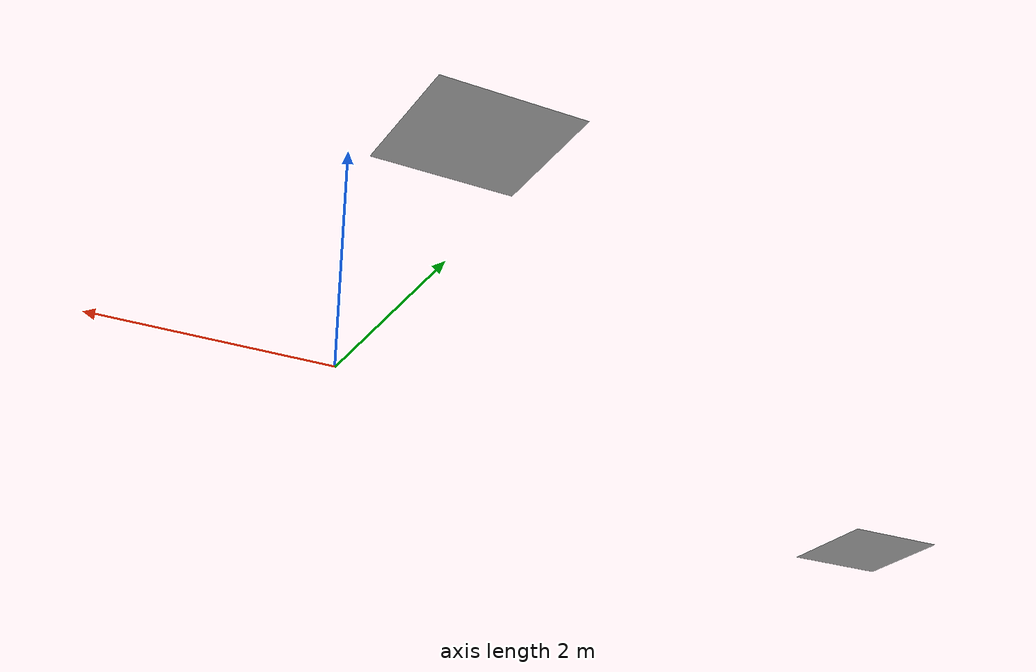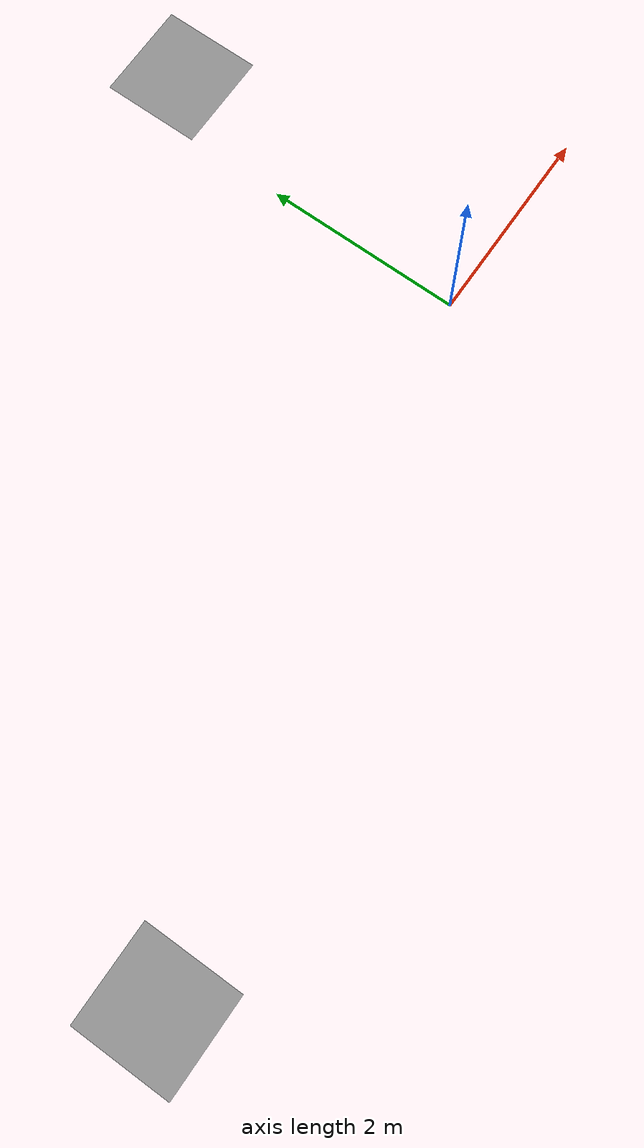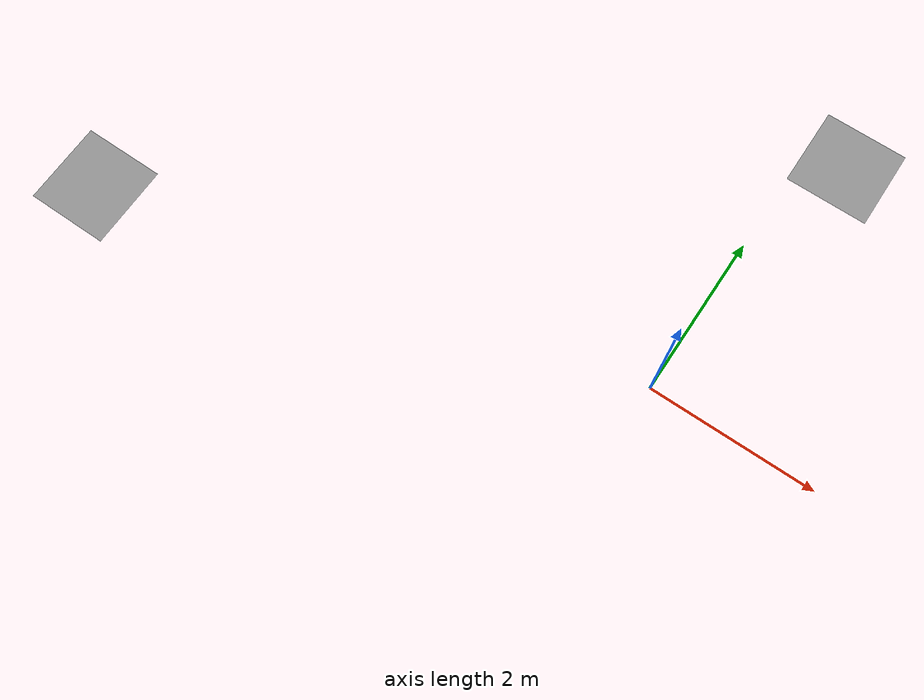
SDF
<?xml version='1.0'?>
<sdf version='1.4'>
  <model name='BuildingCorridor'>
    <link name='Stairs_1'>
      <visual name='Stairs_1_Visual_0'>
        <pose>-6.5 -1.505 0 0 -0 0</pose>
        <geometry>
          <box>
            <size>1 1.01 0</size>
          </box>
        </geometry>
        <material>
          <script>
            <uri>file://media/materials/scripts/gazebo.material</uri>
            <name>Gazebo/Grey</name>
          </script>
        </material>
      </visual>
      <collision name='Stairs_1_Collision_0'>
        <geometry>
          <box>
            <size>1 1.01 0</size>
          </box>
        </geometry>
        <pose>-6.5 -1.505 0 0 -0 0</pose>
      </collision>
    </link>
    <link name='Stairs_3'>
      <visual name='Stairs_3_Visual_0'>
        <pose>0.5 3.50696 0 0 -0 0</pose>
        <geometry>
          <box>
            <size>1 1 0</size>
          </box>
        </geometry>
        <material>
          <script>
            <uri>file://media/materials/scripts/gazebo.material</uri>
            <name>Gazebo/Grey</name>
          </script>
        </material>
      </visual>
      <collision name='Stairs_3_Collision_0'>
        <geometry>
          <box>
            <size>1 1 0</size>
          </box>
        </geometry>
        <pose>0.5 3.50696 0 0 -0 0</pose>
      </collision>
    </link>
    <static>1</static>
  </model>
</sdf>
